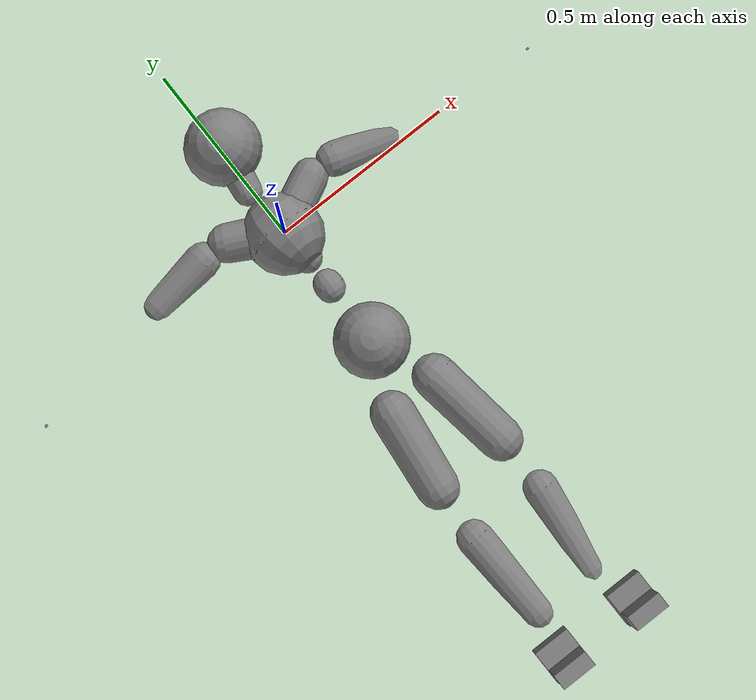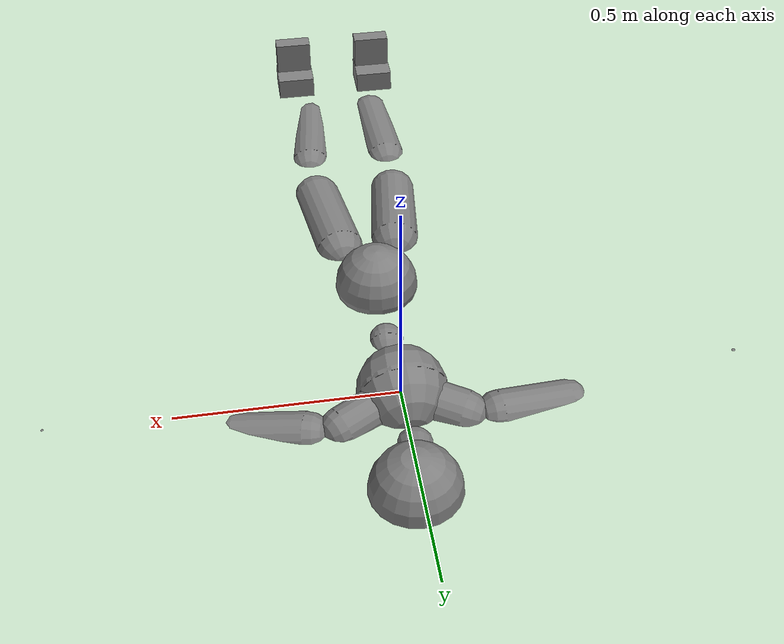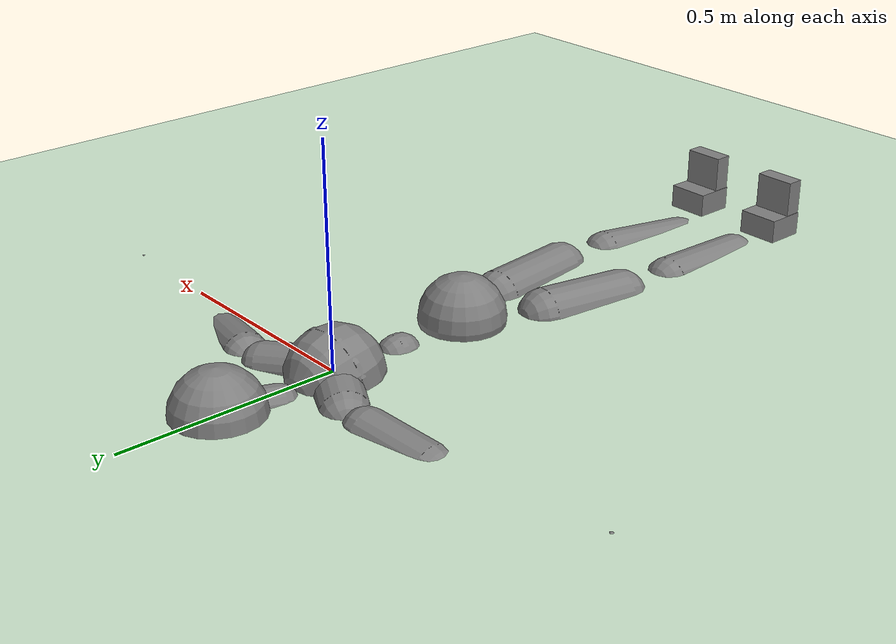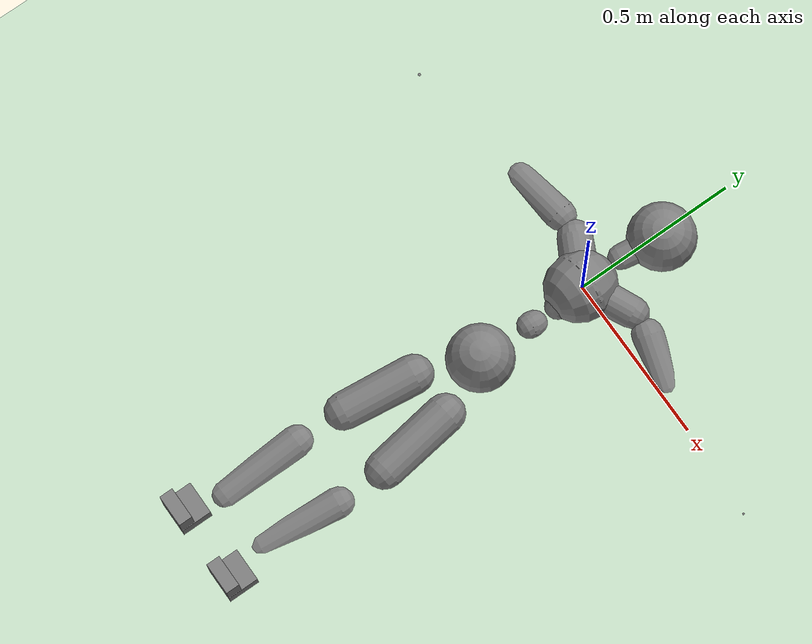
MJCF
<mujoco model="humanoid">
  <compiler coordinate="local"/>
  <statistic extent="2" center="0 0 1"/>
  <option timestep="0.00555"/>
  <default>
    <motor ctrlrange="-1 1" ctrllimited="true"/>
    <geom type="capsule" condim="1" friction="1.0 0.05 0.05" solimp=".9 .99 .003" solref=".015 1"/>
    <joint type="hinge" damping="0.1" stiffness="5" armature=".007" limited="true" solimplimit="0 .99 .01"/>
    <site size=".04" group="3"/>
    <default class="force-torque">
      <site type="box" size=".01 .01 .02" rgba="1 0 0 1"/>
    </default>
    <default class="touch">
      <site type="capsule" rgba="0 0 1 .3"/>
    </default>
  </default>
  <asset>
    <texture type="skybox" builtin="gradient" rgb1=".4 .5 .6" rgb2="0 0 0" width="100" height="100"/>
    <texture builtin="flat" height="1278" mark="cross" markrgb="1 1 1" name="texgeom" random="0.01" rgb1="0.8 0.6 0.4" rgb2="0.8 0.6 0.4" type="cube" width="127"/>
    <texture builtin="checker" height="100" name="texplane" rgb1="0 0 0" rgb2="0.8 0.8 0.8" type="2d" width="100"/>
    <material name="MatPlane" reflectance="0.5" shininess="1" specular="1" texrepeat="60 60" texture="texplane"/>
    <material name="geom" texture="texgeom" texuniform="true"/>
  </asset>
  <worldbody>
    <light cutoff="100" diffuse="1 1 1" dir="-0 0 -1.3" directional="true" exponent="1" pos="0 0 1.3" specular=".1 .1 .1"/>
    <geom conaffinity="1" condim="3" name="floor" pos="0 0 0" rgba="0.8 0.9 0.8 1" size="100 100 .2" type="plane" material="MatPlane"/>
    <body name="Pelvis" pos="0.0031 -0.3514 0.012">
      <freejoint name="Pelvis"/>
      <geom type="sphere" contype="1" conaffinity="1" density="4629.6296296296305" size="0.0985" pos="0.0000 0.0000 0.0000"/>
      <body name="L_Hip" pos="0.0582 -0.0928 -0.026">
        <joint name="L_Hip_x" type="hinge" pos="0 0 0" axis="1 0 0" stiffness="500" damping="50" armature="0.02" range="-180.0000 180.0000"/>
        <joint name="L_Hip_y" type="hinge" pos="0 0 0" axis="0 1 0" stiffness="500" damping="50" armature="0.02" range="-180.0000 180.0000"/>
        <joint name="L_Hip_z" type="hinge" pos="0 0 0" axis="0 0 1" stiffness="500" damping="50" armature="0.02" range="-180.0000 180.0000"/>
        <geom type="capsule" contype="1" conaffinity="1" density="2040.816327" fromto="0.0109 -0.0758 -0.0019 0.0438 -0.3030 -0.0075" size="0.0605"/>
        <body name="L_Knee" pos="0.0547 -0.3788 -0.0094">
          <joint name="L_Knee_x" type="hinge" pos="0 0 0" axis="1 0 0" stiffness="500" damping="50" armature="0.02" range="-180.0000 180.0000"/>
          <joint name="L_Knee_y" type="hinge" pos="0 0 0" axis="0 1 0" stiffness="500" damping="50" armature="0.02" range="-180.0000 180.0000"/>
          <joint name="L_Knee_z" type="hinge" pos="0 0 0" axis="0 0 1" stiffness="500" damping="50" armature="0.02" range="-180.0000 180.0000"/>
          <geom type="capsule" contype="1" conaffinity="1" density="1234.567901" fromto="-0.0087 -0.0806 -0.0064 -0.0348 -0.3224 -0.0255" size="0.0533"/>
          <body name="L_Ankle" pos="-0.0435 -0.4031 -0.0319">
            <joint name="L_Ankle_x" type="hinge" pos="0 0 0" axis="1 0 0" stiffness="400" damping="40" armature="0.02" range="-180.0000 180.0000"/>
            <joint name="L_Ankle_y" type="hinge" pos="0 0 0" axis="0 1 0" stiffness="400" damping="40" armature="0.02" range="-180.0000 180.0000"/>
            <joint name="L_Ankle_z" type="hinge" pos="0 0 0" axis="0 0 1" stiffness="400" damping="40" armature="0.02" range="-180.0000 180.0000"/>
            <geom density="" type="box" pos="0.0407 -0.0287 0.0232" size="0.0498 0.0464 0.0857" quat="1.0000 0.0000 0.0000 0.0000"/>
            <body name="L_Toe" pos="0.0473 -0.058 0.1182">
              <joint name="L_Toe_x" type="hinge" pos="0 0 0" axis="1 0 0" stiffness="200" damping="20" armature="0.02" range="-180.0000 180.0000"/>
              <joint name="L_Toe_y" type="hinge" pos="0 0 0" axis="0 1 0" stiffness="200" damping="20" armature="0.02" range="-180.0000 180.0000"/>
              <joint name="L_Toe_z" type="hinge" pos="0 0 0" axis="0 0 1" stiffness="200" damping="20" armature="0.02" range="-180.0000 180.0000"/>
              <geom density="" type="box" pos="-0.0065 0.0034 0.0256" size="0.0478 0.0205 0.0495" quat="1.0000 0.0000 0.0000 0.0000"/>
            </body>
          </body>
        </body>
      </body>
      <body name="R_Hip" pos="-0.0633 -0.1039 -0.0213">
        <joint name="R_Hip_x" type="hinge" pos="0 0 0" axis="1 0 0" stiffness="500" damping="50" armature="0.02" range="-180.0000 180.0000"/>
        <joint name="R_Hip_y" type="hinge" pos="0 0 0" axis="0 1 0" stiffness="500" damping="50" armature="0.02" range="-180.0000 180.0000"/>
        <joint name="R_Hip_z" type="hinge" pos="0 0 0" axis="0 0 1" stiffness="500" damping="50" armature="0.02" range="-180.0000 180.0000"/>
        <geom type="capsule" contype="1" conaffinity="1" density="2040.816327" fromto="-0.0088 -0.0725 -0.0034 -0.0354 -0.2899 -0.0135" size="0.0598"/>
        <body name="R_Knee" pos="-0.0442 -0.3624 -0.0168">
          <joint name="R_Knee_x" type="hinge" pos="0 0 0" axis="1 0 0" stiffness="500" damping="50" armature="0.02" range="-180.0000 180.0000"/>
          <joint name="R_Knee_y" type="hinge" pos="0 0 0" axis="0 1 0" stiffness="500" damping="50" armature="0.02" range="-180.0000 180.0000"/>
          <joint name="R_Knee_z" type="hinge" pos="0 0 0" axis="0 0 1" stiffness="500" damping="50" armature="0.02" range="-180.0000 180.0000"/>
          <geom type="capsule" contype="1" conaffinity="1" density="1234.567901" fromto="0.0031 -0.0821 -0.0040 0.0123 -0.3286 -0.0162" size="0.0551"/>
          <body name="R_Ankle" pos="0.0154 -0.4107 -0.0202">
            <joint name="R_Ankle_x" type="hinge" pos="0 0 0" axis="1 0 0" stiffness="400" damping="40" armature="0.02" range="-180.0000 180.0000"/>
            <joint name="R_Ankle_y" type="hinge" pos="0 0 0" axis="0 1 0" stiffness="400" damping="40" armature="0.02" range="-180.0000 180.0000"/>
            <joint name="R_Ankle_z" type="hinge" pos="0 0 0" axis="0 0 1" stiffness="400" damping="40" armature="0.02" range="-180.0000 180.0000"/>
            <geom density="" type="box" pos="-0.0243 -0.0263 0.0142" size="0.0498 0.0464 0.0857" quat="1.0000 0.0000 0.0000 0.0000"/>
            <body name="R_Toe" pos="-0.0388 -0.0583 0.119">
              <joint name="R_Toe_x" type="hinge" pos="0 0 0" axis="1 0 0" stiffness="200" damping="20" armature="0.02" range="-180.0000 180.0000"/>
              <joint name="R_Toe_y" type="hinge" pos="0 0 0" axis="0 1 0" stiffness="200" damping="20" armature="0.02" range="-180.0000 180.0000"/>
              <joint name="R_Toe_z" type="hinge" pos="0 0 0" axis="0 0 1" stiffness="200" damping="20" armature="0.02" range="-180.0000 180.0000"/>
              <geom density="" type="box" pos="0.0145 0.0062 0.0158" size="0.0478 0.0205 0.0495" quat="1.0000 0.0000 0.0000 0.0000"/>
            </body>
          </body>
        </body>
      </body>
      <body name="Torso" pos="-0.0028 0.1099 -0.0276">
        <joint name="Torso_x" type="hinge" pos="0 0 0" axis="1 0 0" stiffness="1000" damping="100" armature="0.02" range="-180.0000 180.0000"/>
        <joint name="Torso_y" type="hinge" pos="0 0 0" axis="0 1 0" stiffness="1000" damping="100" armature="0.02" range="-180.0000 180.0000"/>
        <joint name="Torso_z" type="hinge" pos="0 0 0" axis="0 0 1" stiffness="1000" damping="100" armature="0.02" range="-180.0000 180.0000"/>
        <geom type="capsule" contype="1" conaffinity="1" density="2040.816327" fromto="0.0043 0.0593 -0.0027 0.0052 0.0725 -0.0033" size="0.0419"/>
        <body name="Spine" pos="0.0094 0.1319 -0.0059">
          <joint name="Spine_x" type="hinge" pos="0 0 0" axis="1 0 0" stiffness="1000" damping="100" armature="0.02" range="-180.0000 180.0000"/>
          <joint name="Spine_y" type="hinge" pos="0 0 0" axis="0 1 0" stiffness="1000" damping="100" armature="0.02" range="-180.0000 180.0000"/>
          <joint name="Spine_z" type="hinge" pos="0 0 0" axis="0 0 1" stiffness="1000" damping="100" armature="0.02" range="-180.0000 180.0000"/>
          <geom type="capsule" contype="1" conaffinity="1" density="2040.816327" fromto="-0.0051 0.0235 0.0128 -0.0062 0.0287 0.0156" size="0.040"/>
          <body name="Chest" pos="-0.0113 0.0522 0.0284">
            <joint name="Chest_x" type="hinge" pos="0 0 0" axis="1 0 0" stiffness="1000" damping="100" armature="0.02" range="-180.0000 180.0000"/>
            <joint name="Chest_y" type="hinge" pos="0 0 0" axis="0 1 0" stiffness="1000" damping="100" armature="0.02" range="-180.0000 180.0000"/>
            <joint name="Chest_z" type="hinge" pos="0 0 0" axis="0 0 1" stiffness="1000" damping="100" armature="0.02" range="-180.0000 180.0000"/>
            <geom type="capsule" contype="1" conaffinity="1" density="2040.816327" fromto="-0.0020 0.0502 -0.0078 -0.0025 0.0613 -0.0096" size="0.1028"/>
            <body name="Neck" pos="-0.0122 0.1652 -0.0316">
              <joint name="Neck_x" type="hinge" pos="0 0 0" axis="1 0 0" stiffness="100" damping="10" armature="0.02" range="-180.0000 180.0000"/>
              <joint name="Neck_y" type="hinge" pos="0 0 0" axis="0 1 0" stiffness="100" damping="10" armature="0.02" range="-180.0000 180.0000"/>
              <joint name="Neck_z" type="hinge" pos="0 0 0" axis="0 0 1" stiffness="100" damping="10" armature="0.02" range="-180.0000 180.0000"/>
              <geom type="capsule" contype="1" conaffinity="1" density="1000" fromto="0.0050 0.0321 0.0041 0.0198 0.1284 0.0166" size="0.0419"/>
              <body name="Head" pos="0.0248 0.1605 0.0207">
                <joint name="Head_x" type="hinge" pos="0 0 0" axis="1 0 0" stiffness="100" damping="10" armature="0.02" range="-180.0000 180.0000"/>
                <joint name="Head_y" type="hinge" pos="0 0 0" axis="0 1 0" stiffness="100" damping="10" armature="0.02" range="-180.0000 180.0000"/>
                <joint name="Head_z" type="hinge" pos="0 0 0" axis="0 0 1" stiffness="100" damping="10" armature="0.02" range="-180.0000 180.0000"/>
                <geom type="sphere" contype="1" conaffinity="1" density="1000" size="0.1011" pos="0.0000 0.0000 0.0000"/>
              </body>
            </body>
            <body name="L_Thorax" pos="0.0464 0.0849 -0.0072">
              <joint name="L_Thorax_x" type="hinge" pos="0 0 0" axis="1 0 0" stiffness="400" damping="40" armature="0.02" range="-180.0000 180.0000"/>
              <joint name="L_Thorax_y" type="hinge" pos="0 0 0" axis="0 1 0" stiffness="400" damping="40" armature="0.02" range="-180.0000 180.0000"/>
              <joint name="L_Thorax_z" type="hinge" pos="0 0 0" axis="0 0 1" stiffness="400" damping="40" armature="0.02" range="-180.0000 180.0000"/>
              <geom type="capsule" contype="1" conaffinity="1" density="1000" fromto="0.0238 0.0115 -0.0031 0.0954 0.0462 -0.0124" size="0.0488"/>
              <body name="L_Shoulder" pos="0.1192 0.0577 -0.0155">
                <joint name="L_Shoulder_x" type="hinge" pos="0 0 0" axis="1 0 0" stiffness="400" damping="40" armature="0.02" range="-180.0000 180.0000"/>
                <joint name="L_Shoulder_y" type="hinge" pos="0 0 0" axis="0 1 0" stiffness="400" damping="40" armature="0.02" range="-180.0000 180.0000"/>
                <joint name="L_Shoulder_z" type="hinge" pos="0 0 0" axis="0 0 1" stiffness="400" damping="40" armature="0.02" range="-180.0000 180.0000"/>
                <geom type="capsule" contype="1" conaffinity="1" density="1000" fromto="0.0508 -0.0144 -0.0085 0.2033 -0.0577 -0.0340" size="0.0522"/>
                <body name="L_Elbow" pos="0.2541 -0.0722 -0.0425">
                  <joint name="L_Elbow_x" type="hinge" pos="0 0 0" axis="1 0 0" stiffness="300" damping="30" armature="0.02" range="-720.0000 720.0000"/>
                  <joint name="L_Elbow_y" type="hinge" pos="0 0 0" axis="0 1 0" stiffness="300" damping="30" armature="0.02" range="-720.0000 720.0000"/>
                  <joint name="L_Elbow_z" type="hinge" pos="0 0 0" axis="0 0 1" stiffness="300" damping="30" armature="0.02" range="-720.0000 720.0000"/>
                  <geom type="capsule" contype="1" conaffinity="1" density="1000" fromto="0.0504 0.0046 -0.0005 0.2016 0.0186 -0.0020" size="0.0401"/>
                  <body name="L_Wrist" pos="0.252 0.0232 -0.0025">
                    <joint name="L_Wrist_x" type="hinge" pos="0 0 0" axis="1 0 0" stiffness="100" damping="10" armature="0.02" range="-180.0000 180.0000"/>
                    <joint name="L_Wrist_y" type="hinge" pos="0 0 0" axis="0 1 0" stiffness="100" damping="10" armature="0.02" range="-180.0000 180.0000"/>
                    <joint name="L_Wrist_z" type="hinge" pos="0 0 0" axis="0 0 1" stiffness="100" damping="10" armature="0.02" range="-180.0000 180.0000"/>
                    <geom type="capsule" contype="1" conaffinity="1" density="1000" fromto="0.0173 -0.0023 -0.0012 0.0693 -0.0091 -0.0048" size="0.0103"/>
                    <body name="L_Index1" pos="0.1019 -0.0087 0.0194">
                      <joint name="L_Index1_x" type="hinge" pos="0 0 0" axis="1 0 0" stiffness="100" damping="10" armature="0.02" range="-180.0000 180.0000"/>
                      <joint name="L_Index1_y" type="hinge" pos="0 0 0" axis="0 1 0" stiffness="100" damping="10" armature="0.02" range="-180.0000 180.0000"/>
                      <joint name="L_Index1_z" type="hinge" pos="0 0 0" axis="0 0 1" stiffness="100" damping="10" armature="0.02" range="-180.0000 180.0000"/>
                      <geom type="capsule" contype="1" conaffinity="1" density="1000" fromto="0.0060 -0.0022 0.0002 0.0241 -0.0089 0.0009" size="0.0092"/>
                      <body name="L_Index2" pos="0.0301 -0.0112 0.0012">
                        <joint name="L_Index2_x" type="hinge" pos="0 0 0" axis="1 0 0" stiffness="100" damping="10" armature="0.02" range="-180.0000 180.0000"/>
                        <joint name="L_Index2_y" type="hinge" pos="0 0 0" axis="0 1 0" stiffness="100" damping="10" armature="0.02" range="-180.0000 180.0000"/>
                        <joint name="L_Index2_z" type="hinge" pos="0 0 0" axis="0 0 1" stiffness="100" damping="10" armature="0.02" range="-180.0000 180.0000"/>
                        <geom type="capsule" contype="1" conaffinity="1" density="1000" fromto="0.0013 -0.0043 -0.0005 0.0052 -0.0173 -0.0019" size="0.0075"/>
                        <body name="L_Index3" pos="0.0065 -0.0216 -0.0024">
                          <joint name="L_Index3_x" type="hinge" pos="0 0 0" axis="1 0 0" stiffness="100" damping="10" armature="0.02" range="-180.0000 180.0000"/>
                          <joint name="L_Index3_y" type="hinge" pos="0 0 0" axis="0 1 0" stiffness="100" damping="10" armature="0.02" range="-180.0000 180.0000"/>
                          <joint name="L_Index3_z" type="hinge" pos="0 0 0" axis="0 0 1" stiffness="100" damping="10" armature="0.02" range="-180.0000 180.0000"/>
                          <geom type="capsule" contype="1" conaffinity="1" density="1000" fromto="0.0017 -0.0039 -0.0001 0.0068 -0.0157 -0.0003" size="0.0068"/>
                        </body>
                      </body>
                    </body>
                    <body name="L_Middle1" pos="0.1094 -0.0063 -0.004">
                      <joint name="L_Middle1_x" type="hinge" pos="0 0 0" axis="1 0 0" stiffness="100" damping="10" armature="0.02" range="-180.0000 180.0000"/>
                      <joint name="L_Middle1_y" type="hinge" pos="0 0 0" axis="0 1 0" stiffness="100" damping="10" armature="0.02" range="-180.0000 180.0000"/>
                      <joint name="L_Middle1_z" type="hinge" pos="0 0 0" axis="0 0 1" stiffness="100" damping="10" armature="0.02" range="-180.0000 180.0000"/>
                      <geom type="capsule" contype="1" conaffinity="1" density="1000" fromto="0.0053 -0.0030 -0.0009 0.0212 -0.0122 -0.0037" size="0.0094"/>
                      <body name="L_Middle2" pos="0.0265 -0.0152 -0.0046">
                        <joint name="L_Middle2_x" type="hinge" pos="0 0 0" axis="1 0 0" stiffness="100" damping="10" armature="0.02" range="-180.0000 180.0000"/>
                        <joint name="L_Middle2_y" type="hinge" pos="0 0 0" axis="0 1 0" stiffness="100" damping="10" armature="0.02" range="-180.0000 180.0000"/>
                        <joint name="L_Middle2_z" type="hinge" pos="0 0 0" axis="0 0 1" stiffness="100" damping="10" armature="0.02" range="-180.0000 180.0000"/>
                        <geom type="capsule" contype="1" conaffinity="1" density="1000" fromto="0.0010 -0.0047 -0.0004 0.0040 -0.0187 -0.0015" size="0.007"/>
                        <body name="L_Middle3" pos="0.005 -0.0233 -0.0019">
                          <joint name="L_Middle3_x" type="hinge" pos="0 0 0" axis="1 0 0" stiffness="100" damping="10" armature="0.02" range="-180.0000 180.0000"/>
                          <joint name="L_Middle3_y" type="hinge" pos="0 0 0" axis="0 1 0" stiffness="100" damping="10" armature="0.02" range="-180.0000 180.0000"/>
                          <joint name="L_Middle3_z" type="hinge" pos="0 0 0" axis="0 0 1" stiffness="100" damping="10" armature="0.02" range="-180.0000 180.0000"/>
                          <geom type="capsule" contype="1" conaffinity="1" density="1000" fromto="0.0014 -0.0043 0.0000 0.0056 -0.0171 0.0001" size="0.0063"/>
                        </body>
                      </body>
                    </body>
                    <body name="L_Pinky1" pos="0.084 -0.0145 -0.0437">
                      <joint name="L_Pinky1_x" type="hinge" pos="0 0 0" axis="1 0 0" stiffness="100" damping="10" armature="0.02" range="-180.0000 180.0000"/>
                      <joint name="L_Pinky1_y" type="hinge" pos="0 0 0" axis="0 1 0" stiffness="100" damping="10" armature="0.02" range="-180.0000 180.0000"/>
                      <joint name="L_Pinky1_z" type="hinge" pos="0 0 0" axis="0 0 1" stiffness="100" damping="10" armature="0.02" range="-180.0000 180.0000"/>
                      <geom type="capsule" contype="1" conaffinity="1" density="1000" fromto="0.0024 -0.0029 -0.0011 0.0097 -0.0116 -0.0043" size="0.007"/>
                      <body name="L_Pinky2" pos="0.0121 -0.0144 -0.0054">
                        <joint name="L_Pinky2_x" type="hinge" pos="0 0 0" axis="1 0 0" stiffness="100" damping="10" armature="0.02" range="-180.0000 180.0000"/>
                        <joint name="L_Pinky2_y" type="hinge" pos="0 0 0" axis="0 1 0" stiffness="100" damping="10" armature="0.02" range="-180.0000 180.0000"/>
                        <joint name="L_Pinky2_z" type="hinge" pos="0 0 0" axis="0 0 1" stiffness="100" damping="10" armature="0.02" range="-180.0000 180.0000"/>
                        <geom type="capsule" contype="1" conaffinity="1" density="1000" fromto="0.0008 -0.0038 0.0000 0.0030 -0.0151 0.0001" size="0.0063"/>
                        <body name="L_Pinky3" pos="0.0038 -0.0189 0.0002">
                          <joint name="L_Pinky3_x" type="hinge" pos="0 0 0" axis="1 0 0" stiffness="100" damping="10" armature="0.02" range="-180.0000 180.0000"/>
                          <joint name="L_Pinky3_y" type="hinge" pos="0 0 0" axis="0 1 0" stiffness="100" damping="10" armature="0.02" range="-180.0000 180.0000"/>
                          <joint name="L_Pinky3_z" type="hinge" pos="0 0 0" axis="0 0 1" stiffness="100" damping="10" armature="0.02" range="-180.0000 180.0000"/>
                          <geom type="capsule" contype="1" conaffinity="1" density="1000" fromto="0.0012 -0.0034 0.0004 0.0046 -0.0135 0.0017" size="0.0051"/>
                        </body>
                      </body>
                    </body>
                    <body name="L_Ring1" pos="0.0974 -0.0093 -0.0273">
                      <joint name="L_Ring1_x" type="hinge" pos="0 0 0" axis="1 0 0" stiffness="100" damping="10" armature="0.02" range="-180.0000 180.0000"/>
                      <joint name="L_Ring1_y" type="hinge" pos="0 0 0" axis="0 1 0" stiffness="100" damping="10" armature="0.02" range="-180.0000 180.0000"/>
                      <joint name="L_Ring1_z" type="hinge" pos="0 0 0" axis="0 0 1" stiffness="100" damping="10" armature="0.02" range="-180.0000 180.0000"/>
                      <geom type="capsule" contype="1" conaffinity="1" density="1000" fromto="0.0047 -0.0032 -0.0004 0.0188 -0.0128 -0.0015" size="0.0079"/>
                      <body name="L_Ring2" pos="0.0236 -0.0161 -0.0019">
                        <joint name="L_Ring2_x" type="hinge" pos="0 0 0" axis="1 0 0" stiffness="100" damping="10" armature="0.02" range="-180.0000 180.0000"/>
                        <joint name="L_Ring2_y" type="hinge" pos="0 0 0" axis="0 1 0" stiffness="100" damping="10" armature="0.02" range="-180.0000 180.0000"/>
                        <joint name="L_Ring2_z" type="hinge" pos="0 0 0" axis="0 0 1" stiffness="100" damping="10" armature="0.02" range="-180.0000 180.0000"/>
                        <geom type="capsule" contype="1" conaffinity="1" density="1000" fromto="0.0009 -0.0047 0.0002 0.0034 -0.0188 0.0007" size="0.0072"/>
                        <body name="L_Ring3" pos="0.0043 -0.0235 0.0008">
                          <joint name="L_Ring3_x" type="hinge" pos="0 0 0" axis="1 0 0" stiffness="100" damping="10" armature="0.02" range="-180.0000 180.0000"/>
                          <joint name="L_Ring3_y" type="hinge" pos="0 0 0" axis="0 1 0" stiffness="100" damping="10" armature="0.02" range="-180.0000 180.0000"/>
                          <joint name="L_Ring3_z" type="hinge" pos="0 0 0" axis="0 0 1" stiffness="100" damping="10" armature="0.02" range="-180.0000 180.0000"/>
                          <geom type="capsule" contype="1" conaffinity="1" density="1000" fromto="0.0013 -0.0043 0.0006 0.0050 -0.0172 0.0023" size="0.006"/>
                        </body>
                      </body>
                    </body>
                    <body name="L_Thumb1" pos="0.0406 -0.018 0.0256">
                      <joint name="L_Thumb1_x" type="hinge" pos="0 0 0" axis="1 0 0" stiffness="100" damping="10" armature="0.02" range="-180.0000 180.0000"/>
                      <joint name="L_Thumb1_y" type="hinge" pos="0 0 0" axis="0 1 0" stiffness="100" damping="10" armature="0.02" range="-180.0000 180.0000"/>
                      <joint name="L_Thumb1_z" type="hinge" pos="0 0 0" axis="0 0 1" stiffness="100" damping="10" armature="0.02" range="-180.0000 180.0000"/>
                      <geom type="capsule" contype="1" conaffinity="1" density="1000" fromto="0.0043 -0.0035 0.0023 0.0173 -0.0141 0.0093" size="0.0122"/>
                      <body name="L_Thumb2" pos="0.0216 -0.0176 0.0116">
                        <joint name="L_Thumb2_x" type="hinge" pos="0 0 0" axis="1 0 0" stiffness="100" damping="10" armature="0.02" range="-180.0000 180.0000"/>
                        <joint name="L_Thumb2_y" type="hinge" pos="0 0 0" axis="0 1 0" stiffness="100" damping="10" armature="0.02" range="-180.0000 180.0000"/>
                        <joint name="L_Thumb2_z" type="hinge" pos="0 0 0" axis="0 0 1" stiffness="100" damping="10" armature="0.02" range="-180.0000 180.0000"/>
                        <geom type="capsule" contype="1" conaffinity="1" density="1000" fromto="0.0048 -0.0017 0.0013 0.0192 -0.0067 0.0052" size="0.0093"/>
                        <body name="L_Thumb3" pos="0.024 -0.0084 0.0065">
                          <joint name="L_Thumb3_x" type="hinge" pos="0 0 0" axis="1 0 0" stiffness="100" damping="10" armature="0.02" range="-180.0000 180.0000"/>
                          <joint name="L_Thumb3_y" type="hinge" pos="0 0 0" axis="0 1 0" stiffness="100" damping="10" armature="0.02" range="-180.0000 180.0000"/>
                          <joint name="L_Thumb3_z" type="hinge" pos="0 0 0" axis="0 0 1" stiffness="100" damping="10" armature="0.02" range="-180.0000 180.0000"/>
                          <geom type="capsule" contype="1" conaffinity="1" density="1000" fromto="0.0052 -0.0013 0.0017 0.0208 -0.0051 0.0068" size="0.0087"/>
                        </body>
                      </body>
                    </body>
                  </body>
                </body>
              </body>
            </body>
            <body name="R_Thorax" pos="-0.0477 0.0843 -0.0134">
              <joint name="R_Thorax_x" type="hinge" pos="0 0 0" axis="1 0 0" stiffness="400" damping="40" armature="0.02" range="-180.0000 180.0000"/>
              <joint name="R_Thorax_y" type="hinge" pos="0 0 0" axis="0 1 0" stiffness="400" damping="40" armature="0.02" range="-180.0000 180.0000"/>
              <joint name="R_Thorax_z" type="hinge" pos="0 0 0" axis="0 0 1" stiffness="400" damping="40" armature="0.02" range="-180.0000 180.0000"/>
              <geom type="capsule" contype="1" conaffinity="1" density="1000" fromto="-0.0205 0.0107 -0.0025 -0.0821 0.0428 -0.0101" size="0.0536"/>
              <body name="R_Shoulder" pos="-0.1026 0.0535 -0.0127">
                <joint name="R_Shoulder_x" type="hinge" pos="0 0 0" axis="1 0 0" stiffness="400" damping="40" armature="0.02" range="-180.0000 180.0000"/>
                <joint name="R_Shoulder_y" type="hinge" pos="0 0 0" axis="0 1 0" stiffness="400" damping="40" armature="0.02" range="-180.0000 180.0000"/>
                <joint name="R_Shoulder_z" type="hinge" pos="0 0 0" axis="0 0 1" stiffness="400" damping="40" armature="0.02" range="-180.0000 180.0000"/>
                <geom type="capsule" contype="1" conaffinity="1" density="1000" fromto="-0.0542 -0.0073 -0.0053 -0.2169 -0.0292 -0.0212" size="0.0521"/>
                <body name="R_Elbow" pos="-0.2711 -0.0365 -0.0265">
                  <joint name="R_Elbow_x" type="hinge" pos="0 0 0" axis="1 0 0" stiffness="300" damping="30" armature="0.02" range="-720.0000 720.0000"/>
                  <joint name="R_Elbow_y" type="hinge" pos="0 0 0" axis="0 1 0" stiffness="300" damping="30" armature="0.02" range="-720.0000 720.0000"/>
                  <joint name="R_Elbow_z" type="hinge" pos="0 0 0" axis="0 0 1" stiffness="300" damping="30" armature="0.02" range="-720.0000 720.0000"/>
                  <geom type="capsule" contype="1" conaffinity="1" density="1000" fromto="-0.0499 -0.0009 -0.0031 -0.1994 -0.0036 -0.0123" size="0.0404"/>
                  <body name="R_Wrist" pos="-0.2493 -0.0045 -0.0153">
                    <joint name="R_Wrist_x" type="hinge" pos="0 0 0" axis="1 0 0" stiffness="100" damping="10" armature="0.02" range="-180.0000 180.0000"/>
                    <joint name="R_Wrist_y" type="hinge" pos="0 0 0" axis="0 1 0" stiffness="100" damping="10" armature="0.02" range="-180.0000 180.0000"/>
                    <joint name="R_Wrist_z" type="hinge" pos="0 0 0" axis="0 0 1" stiffness="100" damping="10" armature="0.02" range="-180.0000 180.0000"/>
                    <geom type="capsule" contype="1" conaffinity="1" density="1000" fromto="-0.0169 -0.0029 -0.0012 -0.0677 -0.0116 -0.0046" size="0.01"/>
                    <body name="R_Index1" pos="-0.0999 -0.0118 0.0196">
                      <joint name="R_Index1_x" type="hinge" pos="0 0 0" axis="1 0 0" stiffness="100" damping="10" armature="0.02" range="-180.0000 180.0000"/>
                      <joint name="R_Index1_y" type="hinge" pos="0 0 0" axis="0 1 0" stiffness="100" damping="10" armature="0.02" range="-180.0000 180.0000"/>
                      <joint name="R_Index1_z" type="hinge" pos="0 0 0" axis="0 0 1" stiffness="100" damping="10" armature="0.02" range="-180.0000 180.0000"/>
                      <geom type="capsule" contype="1" conaffinity="1" density="1000" fromto="-0.0060 -0.0022 0.0002 -0.0241 -0.0089 0.0009" size="0.0092"/>
                      <body name="R_Index2" pos="-0.0301 -0.0112 0.0012">
                        <joint name="R_Index2_x" type="hinge" pos="0 0 0" axis="1 0 0" stiffness="100" damping="10" armature="0.02" range="-180.0000 180.0000"/>
                        <joint name="R_Index2_y" type="hinge" pos="0 0 0" axis="0 1 0" stiffness="100" damping="10" armature="0.02" range="-180.0000 180.0000"/>
                        <joint name="R_Index2_z" type="hinge" pos="0 0 0" axis="0 0 1" stiffness="100" damping="10" armature="0.02" range="-180.0000 180.0000"/>
                        <geom type="capsule" contype="1" conaffinity="1" density="1000" fromto="-0.0013 -0.0043 -0.0005 -0.0052 -0.0173 -0.0019" size="0.0076"/>
                        <body name="R_Index3" pos="-0.0065 -0.0216 -0.0024">
                          <joint name="R_Index3_x" type="hinge" pos="0 0 0" axis="1 0 0" stiffness="100" damping="10" armature="0.02" range="-180.0000 180.0000"/>
                          <joint name="R_Index3_y" type="hinge" pos="0 0 0" axis="0 1 0" stiffness="100" damping="10" armature="0.02" range="-180.0000 180.0000"/>
                          <joint name="R_Index3_z" type="hinge" pos="0 0 0" axis="0 0 1" stiffness="100" damping="10" armature="0.02" range="-180.0000 180.0000"/>
                          <geom type="capsule" contype="1" conaffinity="1" density="1000" fromto="-0.0009 -0.0039 -0.0001 -0.0036 -0.0157 -0.0003" size="0.0069"/>
                        </body>
                      </body>
                    </body>
                    <body name="R_Middle1" pos="-0.1074 -0.0094 -0.0037">
                      <joint name="R_Middle1_x" type="hinge" pos="0 0 0" axis="1 0 0" stiffness="100" damping="10" armature="0.02" range="-180.0000 180.0000"/>
                      <joint name="R_Middle1_y" type="hinge" pos="0 0 0" axis="0 1 0" stiffness="100" damping="10" armature="0.02" range="-180.0000 180.0000"/>
                      <joint name="R_Middle1_z" type="hinge" pos="0 0 0" axis="0 0 1" stiffness="100" damping="10" armature="0.02" range="-180.0000 180.0000"/>
                      <geom type="capsule" contype="1" conaffinity="1" density="1000" fromto="-0.0053 -0.0030 -0.0009 -0.0212 -0.0122 -0.0037" size="0.0094"/>
                      <body name="R_Middle2" pos="-0.0265 -0.0152 -0.0046">
                        <joint name="R_Middle2_x" type="hinge" pos="0 0 0" axis="1 0 0" stiffness="100" damping="10" armature="0.02" range="-180.0000 180.0000"/>
                        <joint name="R_Middle2_y" type="hinge" pos="0 0 0" axis="0 1 0" stiffness="100" damping="10" armature="0.02" range="-180.0000 180.0000"/>
                        <joint name="R_Middle2_z" type="hinge" pos="0 0 0" axis="0 0 1" stiffness="100" damping="10" armature="0.02" range="-180.0000 180.0000"/>
                        <geom type="capsule" contype="1" conaffinity="1" density="1000" fromto="-0.0010 -0.0047 -0.0004 -0.0040 -0.0187 -0.0015" size="0.0071"/>
                        <body name="R_Middle3" pos="-0.005 -0.0233 -0.0019">
                          <joint name="R_Middle3_x" type="hinge" pos="0 0 0" axis="1 0 0" stiffness="100" damping="10" armature="0.02" range="-180.0000 180.0000"/>
                          <joint name="R_Middle3_y" type="hinge" pos="0 0 0" axis="0 1 0" stiffness="100" damping="10" armature="0.02" range="-180.0000 180.0000"/>
                          <joint name="R_Middle3_z" type="hinge" pos="0 0 0" axis="0 0 1" stiffness="100" damping="10" armature="0.02" range="-180.0000 180.0000"/>
                          <geom type="capsule" contype="1" conaffinity="1" density="1000" fromto="-0.0006 -0.0043 0.0000 -0.0024 -0.0171 0.0001" size="0.0064"/>
                        </body>
                      </body>
                    </body>
                    <body name="R_Pinky1" pos="-0.082 -0.0176 -0.0435">
                      <joint name="R_Pinky1_x" type="hinge" pos="0 0 0" axis="1 0 0" stiffness="100" damping="10" armature="0.02" range="-180.0000 180.0000"/>
                      <joint name="R_Pinky1_y" type="hinge" pos="0 0 0" axis="0 1 0" stiffness="100" damping="10" armature="0.02" range="-180.0000 180.0000"/>
                      <joint name="R_Pinky1_z" type="hinge" pos="0 0 0" axis="0 0 1" stiffness="100" damping="10" armature="0.02" range="-180.0000 180.0000"/>
                      <geom type="capsule" contype="1" conaffinity="1" density="1000" fromto="-0.0024 -0.0029 -0.0011 -0.0097 -0.0116 -0.0043" size="0.007"/>
                      <body name="R_Pinky2" pos="-0.0121 -0.0144 -0.0054">
                        <joint name="R_Pinky2_x" type="hinge" pos="0 0 0" axis="1 0 0" stiffness="100" damping="10" armature="0.02" range="-180.0000 180.0000"/>
                        <joint name="R_Pinky2_y" type="hinge" pos="0 0 0" axis="0 1 0" stiffness="100" damping="10" armature="0.02" range="-180.0000 180.0000"/>
                        <joint name="R_Pinky2_z" type="hinge" pos="0 0 0" axis="0 0 1" stiffness="100" damping="10" armature="0.02" range="-180.0000 180.0000"/>
                        <geom type="capsule" contype="1" conaffinity="1" density="1000" fromto="-0.0008 -0.0038 0.0000 -0.0030 -0.0151 0.0001" size="0.0063"/>
                        <body name="R_Pinky3" pos="-0.0038 -0.0189 0.0002">
                          <joint name="R_Pinky3_x" type="hinge" pos="0 0 0" axis="1 0 0" stiffness="100" damping="10" armature="0.02" range="-180.0000 180.0000"/>
                          <joint name="R_Pinky3_y" type="hinge" pos="0 0 0" axis="0 1 0" stiffness="100" damping="10" armature="0.02" range="-180.0000 180.0000"/>
                          <joint name="R_Pinky3_z" type="hinge" pos="0 0 0" axis="0 0 1" stiffness="100" damping="10" armature="0.02" range="-180.0000 180.0000"/>
                          <geom type="capsule" contype="1" conaffinity="1" density="1000" fromto="-0.0004 -0.0034 0.0004 -0.0014 -0.0135 0.0017" size="0.0052"/>
                        </body>
                      </body>
                    </body>
                    <body name="R_Ring1" pos="-0.0954 -0.0124 -0.0271">
                      <joint name="R_Ring1_x" type="hinge" pos="0 0 0" axis="1 0 0" stiffness="100" damping="10" armature="0.02" range="-180.0000 180.0000"/>
                      <joint name="R_Ring1_y" type="hinge" pos="0 0 0" axis="0 1 0" stiffness="100" damping="10" armature="0.02" range="-180.0000 180.0000"/>
                      <joint name="R_Ring1_z" type="hinge" pos="0 0 0" axis="0 0 1" stiffness="100" damping="10" armature="0.02" range="-180.0000 180.0000"/>
                      <geom type="capsule" contype="1" conaffinity="1" density="1000" fromto="-0.0047 -0.0032 -0.0004 -0.0188 -0.0128 -0.0015" size="0.0079"/>
                      <body name="R_Ring2" pos="-0.0236 -0.0161 -0.0019">
                        <joint name="R_Ring2_x" type="hinge" pos="0 0 0" axis="1 0 0" stiffness="100" damping="10" armature="0.02" range="-180.0000 180.0000"/>
                        <joint name="R_Ring2_y" type="hinge" pos="0 0 0" axis="0 1 0" stiffness="100" damping="10" armature="0.02" range="-180.0000 180.0000"/>
                        <joint name="R_Ring2_z" type="hinge" pos="0 0 0" axis="0 0 1" stiffness="100" damping="10" armature="0.02" range="-180.0000 180.0000"/>
                        <geom type="capsule" contype="1" conaffinity="1" density="1000" fromto="-0.0009 -0.0047 0.0002 -0.0034 -0.0188 0.0007" size="0.0072"/>
                        <body name="R_Ring3" pos="-0.0043 -0.0235 0.0008">
                          <joint name="R_Ring3_x" type="hinge" pos="0 0 0" axis="1 0 0" stiffness="100" damping="10" armature="0.02" range="-180.0000 180.0000"/>
                          <joint name="R_Ring3_y" type="hinge" pos="0 0 0" axis="0 1 0" stiffness="100" damping="10" armature="0.02" range="-180.0000 180.0000"/>
                          <joint name="R_Ring3_z" type="hinge" pos="0 0 0" axis="0 0 1" stiffness="100" damping="10" armature="0.02" range="-180.0000 180.0000"/>
                          <geom type="capsule" contype="1" conaffinity="1" density="1000" fromto="-0.0005 -0.0043 0.0006 -0.0018 -0.0172 0.0023" size="0.006"/>
                        </body>
                      </body>
                    </body>
                    <body name="R_Thumb1" pos="-0.0386 -0.0211 0.0259">
                      <joint name="R_Thumb1_x" type="hinge" pos="0 0 0" axis="1 0 0" stiffness="100" damping="10" armature="0.02" range="-180.0000 180.0000"/>
                      <joint name="R_Thumb1_y" type="hinge" pos="0 0 0" axis="0 1 0" stiffness="100" damping="10" armature="0.02" range="-180.0000 180.0000"/>
                      <joint name="R_Thumb1_z" type="hinge" pos="0 0 0" axis="0 0 1" stiffness="100" damping="10" armature="0.02" range="-180.0000 180.0000"/>
                      <geom type="capsule" contype="1" conaffinity="1" density="1000" fromto="-0.0043 -0.0035 0.0023 -0.0173 -0.0141 0.0093" size="0.0122"/>
                      <body name="R_Thumb2" pos="-0.0216 -0.0176 0.0116">
                        <joint name="R_Thumb2_x" type="hinge" pos="0 0 0" axis="1 0 0" stiffness="100" damping="10" armature="0.02" range="-180.0000 180.0000"/>
                        <joint name="R_Thumb2_y" type="hinge" pos="0 0 0" axis="0 1 0" stiffness="100" damping="10" armature="0.02" range="-180.0000 180.0000"/>
                        <joint name="R_Thumb2_z" type="hinge" pos="0 0 0" axis="0 0 1" stiffness="100" damping="10" armature="0.02" range="-180.0000 180.0000"/>
                        <geom type="capsule" contype="1" conaffinity="1" density="1000" fromto="-0.0048 -0.0017 0.0013 -0.0192 -0.0067 0.0052" size="0.0093"/>
                        <body name="R_Thumb3" pos="-0.024 -0.0084 0.0065">
                          <joint name="R_Thumb3_x" type="hinge" pos="0 0 0" axis="1 0 0" stiffness="100" damping="10" armature="0.02" range="-180.0000 180.0000"/>
                          <joint name="R_Thumb3_y" type="hinge" pos="0 0 0" axis="0 1 0" stiffness="100" damping="10" armature="0.02" range="-180.0000 180.0000"/>
                          <joint name="R_Thumb3_z" type="hinge" pos="0 0 0" axis="0 0 1" stiffness="100" damping="10" armature="0.02" range="-180.0000 180.0000"/>
                          <geom type="capsule" contype="1" conaffinity="1" density="1000" fromto="-0.0044 -0.0013 0.0017 -0.0176 -0.0051 0.0068" size="0.009"/>
                        </body>
                      </body>
                    </body>
                  </body>
                </body>
              </body>
            </body>
          </body>
        </body>
      </body>
    </body>
  </worldbody>
  <actuator>
    <motor name="L_Hip_x" joint="L_Hip_x" gear="500"/>
    <motor name="L_Hip_y" joint="L_Hip_y" gear="500"/>
    <motor name="L_Hip_z" joint="L_Hip_z" gear="500"/>
    <motor name="L_Knee_x" joint="L_Knee_x" gear="500"/>
    <motor name="L_Knee_y" joint="L_Knee_y" gear="500"/>
    <motor name="L_Knee_z" joint="L_Knee_z" gear="500"/>
    <motor name="L_Ankle_x" joint="L_Ankle_x" gear="500"/>
    <motor name="L_Ankle_y" joint="L_Ankle_y" gear="500"/>
    <motor name="L_Ankle_z" joint="L_Ankle_z" gear="500"/>
    <motor name="L_Toe_x" joint="L_Toe_x" gear="500"/>
    <motor name="L_Toe_y" joint="L_Toe_y" gear="500"/>
    <motor name="L_Toe_z" joint="L_Toe_z" gear="500"/>
    <motor name="R_Hip_x" joint="R_Hip_x" gear="500"/>
    <motor name="R_Hip_y" joint="R_Hip_y" gear="500"/>
    <motor name="R_Hip_z" joint="R_Hip_z" gear="500"/>
    <motor name="R_Knee_x" joint="R_Knee_x" gear="500"/>
    <motor name="R_Knee_y" joint="R_Knee_y" gear="500"/>
    <motor name="R_Knee_z" joint="R_Knee_z" gear="500"/>
    <motor name="R_Ankle_x" joint="R_Ankle_x" gear="500"/>
    <motor name="R_Ankle_y" joint="R_Ankle_y" gear="500"/>
    <motor name="R_Ankle_z" joint="R_Ankle_z" gear="500"/>
    <motor name="R_Toe_x" joint="R_Toe_x" gear="500"/>
    <motor name="R_Toe_y" joint="R_Toe_y" gear="500"/>
    <motor name="R_Toe_z" joint="R_Toe_z" gear="500"/>
    <motor name="Torso_x" joint="Torso_x" gear="500"/>
    <motor name="Torso_y" joint="Torso_y" gear="500"/>
    <motor name="Torso_z" joint="Torso_z" gear="500"/>
    <motor name="Spine_x" joint="Spine_x" gear="500"/>
    <motor name="Spine_y" joint="Spine_y" gear="500"/>
    <motor name="Spine_z" joint="Spine_z" gear="500"/>
    <motor name="Chest_x" joint="Chest_x" gear="500"/>
    <motor name="Chest_y" joint="Chest_y" gear="500"/>
    <motor name="Chest_z" joint="Chest_z" gear="500"/>
    <motor name="Neck_x" joint="Neck_x" gear="500"/>
    <motor name="Neck_y" joint="Neck_y" gear="500"/>
    <motor name="Neck_z" joint="Neck_z" gear="500"/>
    <motor name="Head_x" joint="Head_x" gear="500"/>
    <motor name="Head_y" joint="Head_y" gear="500"/>
    <motor name="Head_z" joint="Head_z" gear="500"/>
    <motor name="L_Thorax_x" joint="L_Thorax_x" gear="500"/>
    <motor name="L_Thorax_y" joint="L_Thorax_y" gear="500"/>
    <motor name="L_Thorax_z" joint="L_Thorax_z" gear="500"/>
    <motor name="L_Shoulder_x" joint="L_Shoulder_x" gear="500"/>
    <motor name="L_Shoulder_y" joint="L_Shoulder_y" gear="500"/>
    <motor name="L_Shoulder_z" joint="L_Shoulder_z" gear="500"/>
    <motor name="L_Elbow_x" joint="L_Elbow_x" gear="500"/>
    <motor name="L_Elbow_y" joint="L_Elbow_y" gear="500"/>
    <motor name="L_Elbow_z" joint="L_Elbow_z" gear="500"/>
    <motor name="L_Wrist_x" joint="L_Wrist_x" gear="500"/>
    <motor name="L_Wrist_y" joint="L_Wrist_y" gear="500"/>
    <motor name="L_Wrist_z" joint="L_Wrist_z" gear="500"/>
    <motor name="L_Index1_x" joint="L_Index1_x" gear="500"/>
    <motor name="L_Index1_y" joint="L_Index1_y" gear="500"/>
    <motor name="L_Index1_z" joint="L_Index1_z" gear="500"/>
    <motor name="L_Index2_x" joint="L_Index2_x" gear="500"/>
    <motor name="L_Index2_y" joint="L_Index2_y" gear="500"/>
    <motor name="L_Index2_z" joint="L_Index2_z" gear="500"/>
    <motor name="L_Index3_x" joint="L_Index3_x" gear="500"/>
    <motor name="L_Index3_y" joint="L_Index3_y" gear="500"/>
    <motor name="L_Index3_z" joint="L_Index3_z" gear="500"/>
    <motor name="L_Middle1_x" joint="L_Middle1_x" gear="500"/>
    <motor name="L_Middle1_y" joint="L_Middle1_y" gear="500"/>
    <motor name="L_Middle1_z" joint="L_Middle1_z" gear="500"/>
    <motor name="L_Middle2_x" joint="L_Middle2_x" gear="500"/>
    <motor name="L_Middle2_y" joint="L_Middle2_y" gear="500"/>
    <motor name="L_Middle2_z" joint="L_Middle2_z" gear="500"/>
    <motor name="L_Middle3_x" joint="L_Middle3_x" gear="500"/>
    <motor name="L_Middle3_y" joint="L_Middle3_y" gear="500"/>
    <motor name="L_Middle3_z" joint="L_Middle3_z" gear="500"/>
    <motor name="L_Pinky1_x" joint="L_Pinky1_x" gear="500"/>
    <motor name="L_Pinky1_y" joint="L_Pinky1_y" gear="500"/>
    <motor name="L_Pinky1_z" joint="L_Pinky1_z" gear="500"/>
    <motor name="L_Pinky2_x" joint="L_Pinky2_x" gear="500"/>
    <motor name="L_Pinky2_y" joint="L_Pinky2_y" gear="500"/>
    <motor name="L_Pinky2_z" joint="L_Pinky2_z" gear="500"/>
    <motor name="L_Pinky3_x" joint="L_Pinky3_x" gear="500"/>
    <motor name="L_Pinky3_y" joint="L_Pinky3_y" gear="500"/>
    <motor name="L_Pinky3_z" joint="L_Pinky3_z" gear="500"/>
    <motor name="L_Ring1_x" joint="L_Ring1_x" gear="500"/>
    <motor name="L_Ring1_y" joint="L_Ring1_y" gear="500"/>
    <motor name="L_Ring1_z" joint="L_Ring1_z" gear="500"/>
    <motor name="L_Ring2_x" joint="L_Ring2_x" gear="500"/>
    <motor name="L_Ring2_y" joint="L_Ring2_y" gear="500"/>
    <motor name="L_Ring2_z" joint="L_Ring2_z" gear="500"/>
    <motor name="L_Ring3_x" joint="L_Ring3_x" gear="500"/>
    <motor name="L_Ring3_y" joint="L_Ring3_y" gear="500"/>
    <motor name="L_Ring3_z" joint="L_Ring3_z" gear="500"/>
    <motor name="L_Thumb1_x" joint="L_Thumb1_x" gear="500"/>
    <motor name="L_Thumb1_y" joint="L_Thumb1_y" gear="500"/>
    <motor name="L_Thumb1_z" joint="L_Thumb1_z" gear="500"/>
    <motor name="L_Thumb2_x" joint="L_Thumb2_x" gear="500"/>
    <motor name="L_Thumb2_y" joint="L_Thumb2_y" gear="500"/>
    <motor name="L_Thumb2_z" joint="L_Thumb2_z" gear="500"/>
    <motor name="L_Thumb3_x" joint="L_Thumb3_x" gear="500"/>
    <motor name="L_Thumb3_y" joint="L_Thumb3_y" gear="500"/>
    <motor name="L_Thumb3_z" joint="L_Thumb3_z" gear="500"/>
    <motor name="R_Thorax_x" joint="R_Thorax_x" gear="500"/>
    <motor name="R_Thorax_y" joint="R_Thorax_y" gear="500"/>
    <motor name="R_Thorax_z" joint="R_Thorax_z" gear="500"/>
    <motor name="R_Shoulder_x" joint="R_Shoulder_x" gear="500"/>
    <motor name="R_Shoulder_y" joint="R_Shoulder_y" gear="500"/>
    <motor name="R_Shoulder_z" joint="R_Shoulder_z" gear="500"/>
    <motor name="R_Elbow_x" joint="R_Elbow_x" gear="500"/>
    <motor name="R_Elbow_y" joint="R_Elbow_y" gear="500"/>
    <motor name="R_Elbow_z" joint="R_Elbow_z" gear="500"/>
    <motor name="R_Wrist_x" joint="R_Wrist_x" gear="500"/>
    <motor name="R_Wrist_y" joint="R_Wrist_y" gear="500"/>
    <motor name="R_Wrist_z" joint="R_Wrist_z" gear="500"/>
    <motor name="R_Index1_x" joint="R_Index1_x" gear="500"/>
    <motor name="R_Index1_y" joint="R_Index1_y" gear="500"/>
    <motor name="R_Index1_z" joint="R_Index1_z" gear="500"/>
    <motor name="R_Index2_x" joint="R_Index2_x" gear="500"/>
    <motor name="R_Index2_y" joint="R_Index2_y" gear="500"/>
    <motor name="R_Index2_z" joint="R_Index2_z" gear="500"/>
    <motor name="R_Index3_x" joint="R_Index3_x" gear="500"/>
    <motor name="R_Index3_y" joint="R_Index3_y" gear="500"/>
    <motor name="R_Index3_z" joint="R_Index3_z" gear="500"/>
    <motor name="R_Middle1_x" joint="R_Middle1_x" gear="500"/>
    <motor name="R_Middle1_y" joint="R_Middle1_y" gear="500"/>
    <motor name="R_Middle1_z" joint="R_Middle1_z" gear="500"/>
    <motor name="R_Middle2_x" joint="R_Middle2_x" gear="500"/>
    <motor name="R_Middle2_y" joint="R_Middle2_y" gear="500"/>
    <motor name="R_Middle2_z" joint="R_Middle2_z" gear="500"/>
    <motor name="R_Middle3_x" joint="R_Middle3_x" gear="500"/>
    <motor name="R_Middle3_y" joint="R_Middle3_y" gear="500"/>
    <motor name="R_Middle3_z" joint="R_Middle3_z" gear="500"/>
    <motor name="R_Pinky1_x" joint="R_Pinky1_x" gear="500"/>
    <motor name="R_Pinky1_y" joint="R_Pinky1_y" gear="500"/>
    <motor name="R_Pinky1_z" joint="R_Pinky1_z" gear="500"/>
    <motor name="R_Pinky2_x" joint="R_Pinky2_x" gear="500"/>
    <motor name="R_Pinky2_y" joint="R_Pinky2_y" gear="500"/>
    <motor name="R_Pinky2_z" joint="R_Pinky2_z" gear="500"/>
    <motor name="R_Pinky3_x" joint="R_Pinky3_x" gear="500"/>
    <motor name="R_Pinky3_y" joint="R_Pinky3_y" gear="500"/>
    <motor name="R_Pinky3_z" joint="R_Pinky3_z" gear="500"/>
    <motor name="R_Ring1_x" joint="R_Ring1_x" gear="500"/>
    <motor name="R_Ring1_y" joint="R_Ring1_y" gear="500"/>
    <motor name="R_Ring1_z" joint="R_Ring1_z" gear="500"/>
    <motor name="R_Ring2_x" joint="R_Ring2_x" gear="500"/>
    <motor name="R_Ring2_y" joint="R_Ring2_y" gear="500"/>
    <motor name="R_Ring2_z" joint="R_Ring2_z" gear="500"/>
    <motor name="R_Ring3_x" joint="R_Ring3_x" gear="500"/>
    <motor name="R_Ring3_y" joint="R_Ring3_y" gear="500"/>
    <motor name="R_Ring3_z" joint="R_Ring3_z" gear="500"/>
    <motor name="R_Thumb1_x" joint="R_Thumb1_x" gear="500"/>
    <motor name="R_Thumb1_y" joint="R_Thumb1_y" gear="500"/>
    <motor name="R_Thumb1_z" joint="R_Thumb1_z" gear="500"/>
    <motor name="R_Thumb2_x" joint="R_Thumb2_x" gear="500"/>
    <motor name="R_Thumb2_y" joint="R_Thumb2_y" gear="500"/>
    <motor name="R_Thumb2_z" joint="R_Thumb2_z" gear="500"/>
    <motor name="R_Thumb3_x" joint="R_Thumb3_x" gear="500"/>
    <motor name="R_Thumb3_y" joint="R_Thumb3_y" gear="500"/>
    <motor name="R_Thumb3_z" joint="R_Thumb3_z" gear="500"/>
  </actuator>
  <contact/>
  <size njmax="700" nconmax="700"/>
</mujoco>
